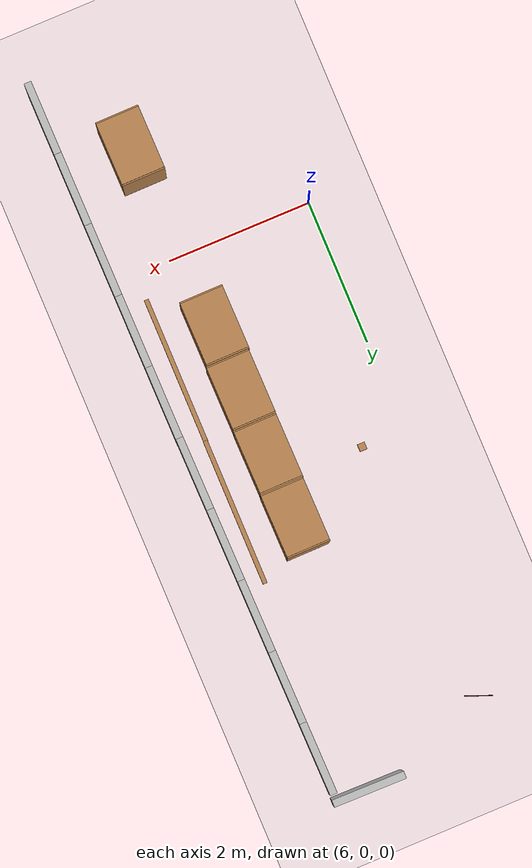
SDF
<sdf version="1.7">
 <world name="default">
  <model name="ground_plane">
   <static>1</static>
   <link name="link">
    <collision name="collision">
     <geometry><plane><normal>0 0 1</normal><size>100 100</size></plane></geometry>
     <surface><friction><ode><mu>100</mu><mu2>50</mu2></ode></friction></surface>
    </collision>
    <visual name="visual">
     <cast_shadows>0</cast_shadows>
     <geometry><plane><normal>0 0 1</normal><size>100 100</size></plane></geometry>
     <material>
      <script><uri>file://media/materials/scripts/gazebo.material</uri><name>Gazebo/Grey</name></script>
     </material>
    </visual>
   </link>
  </model>
  <model name="env_wood_shelf">
   <link name="base">
    <inertial>
     <pose>0 0 0.8 0 -0 0</pose>
     <mass>100</mass>
     <inertia><ixx>33.4</ixx><ixy>0</ixy><ixz>0</ixz><iyy>41.7</iyy><iyz>0</iyz><izz>8.42</izz></inertia>
    </inertial>
    <collision name="collision_bottom">
     <pose>0 0 0.01 0 -0 0</pose>
     <geometry><box><size>0.6 0.9 0.02</size></box></geometry>
    </collision>
    <visual name="visual_bottom">
     <pose>0 0 0.01 0 -0 0</pose>
     <geometry><box><size>0.6 0.9 0.02</size></box></geometry>
     <material>
      <script><uri>model://env_wood_shelf/materials/test_texture.material</uri><name>WoodTecture1</name></script>
     </material>
    </visual>
    <collision name="collision_middle1">
     <pose>0 0 0.61 0 -0 0</pose>
     <geometry><box><size>0.6 0.86 0.02</size></box></geometry>
    </collision>
    <visual name="visual_middle1">
     <pose>0 0 0.61 0 -0 0</pose>
     <geometry><box><size>0.6 0.86 0.02</size></box></geometry>
     <material>
      <script><uri>model://env_wood_shelf/materials/test_texture.material</uri><name>WoodTecture1</name></script>
     </material>
    </visual>
    <collision name="collision_middle2">
     <pose>0 0 1.11 0 -0 0</pose>
     <geometry><box><size>0.6 0.86 0.02</size></box></geometry>
    </collision>
    <visual name="visual_middle2">
     <pose>0 0 1.11 0 -0 0</pose>
     <geometry><box><size>0.6 0.86 0.02</size></box></geometry>
     <material>
      <script><uri>model://env_wood_shelf/materials/test_texture.material</uri><name>WoodTecture1</name></script>
     </material>
    </visual>
    <collision name="collision_top">
     <pose>0 0 1.59 0 -0 0</pose>
     <geometry><box><size>0.6 0.86 0.02</size></box></geometry>
    </collision>
    <visual name="visual_top">
     <pose>0 0 1.59 0 -0 0</pose>
     <geometry><box><size>0.6 0.86 0.02</size></box></geometry>
     <material>
      <script><uri>model://env_wood_shelf/materials/test_texture.material</uri><name>WoodTecture1</name></script>
     </material>
    </visual>
    <collision name="collision_right">
     <pose>0 0.44 0.8 0 -0 0</pose>
     <geometry><box><size>0.6 0.02 1.56</size></box></geometry>
    </collision>
    <visual name="visual_right">
     <pose>0 0.44 0.8 0 1.5707 0</pose>
     <geometry><box><size>1.56 0.02 0.6</size></box></geometry>
     <material>
      <script><uri>model://env_wood_shelf/materials/test_texture.material</uri><name>WoodTecture1</name></script>
     </material>
    </visual>
    <collision name="collision_left">
     <pose>0 -0.44 0.8 0 -0 0</pose>
     <geometry><box><size>0.6 0.02 1.56</size></box></geometry>
    </collision>
    <visual name="visual_left">
     <pose>0 -0.44 0.8 0 1.5707 0</pose>
     <geometry><box><size>1.56 0.02 0.6</size></box></geometry>
     <material>
      <script><uri>model://env_wood_shelf/materials/test_texture.material</uri><name>WoodTecture1</name></script>
     </material>
    </visual>
    <collision name="collision_box">
     <pose>0 -0.22 0.22 0 -0 0</pose>
     <geometry><box><size>0.4 0.3 0.4</size></box></geometry>
    </collision>
    <visual name="visual_box">
     <pose>0 -0.22 0.22 0 -0 0</pose>
     <geometry><box><size>0.4 0.3 0.4</size></box></geometry>
     <material>
      <script>
       <uri>model://env_wood_shelf/materials/test_texture.material</uri>
       <name>PlasticBlackTexture</name>
      </script>
     </material>
    </visual>
    <collision name="collision_cylinder">
     <pose>0 0.2 0.17 0 -0 0</pose>
     <geometry><cylinder><radius>0.2</radius><length>0.3</length></cylinder></geometry>
    </collision>
    <visual name="visual_cylinder">
     <pose>0 0.2 0.17 0 -0 0</pose>
     <geometry><cylinder><radius>0.2</radius><length>0.3</length></cylinder></geometry>
     <material>
      <script>
       <uri>model://env_wood_shelf/materials/test_texture.material</uri>
       <name>PlasticBlueTexture</name>
      </script>
     </material>
    </visual>
    <collision name="collision_book1">
     <pose>0 0 0.77 0 -0 0</pose>
     <geometry><box><size>0.4 0.86 0.3</size></box></geometry>
    </collision>
    <visual name="visual_books1">
     <pose>0 0 0.77 0 -0 0</pose>
     <geometry><box><size>0.4 0.86 0.3</size></box></geometry>
     <material>
      <script><uri>model://env_wood_shelf/materials/test_texture.material</uri><name>Books1Texture</name></script>
     </material>
    </visual>
    <collision name="collision_book2">
     <pose>0 0 1.27 0 -0 0</pose>
     <geometry><box><size>0.4 0.86 0.3</size></box></geometry>
    </collision>
    <visual name="visual_books2">
     <pose>0 0 1.27 0 -0 0</pose>
     <geometry><box><size>0.4 0.86 0.3</size></box></geometry>
     <material>
      <script><uri>model://env_wood_shelf/materials/test_texture.material</uri><name>Books2Texture</name></script>
     </material>
    </visual>
   </link>
   <pose>7.90553 -1.47724 0.00095 -8.4e-05 -4e-05 0.007382</pose>
  </model>
  <model name="env_large_room_1">
   <link name="base">
    <inertial>
     <mass>100</mass>
     <inertia><ixx>33.4</ixx><ixy>0</ixy><ixz>0</ixz><iyy>41.7</iyy><iyz>0</iyz><izz>8.42</izz></inertia>
    </inertial>
    <collision name="collision1">
     <pose>-2 0 0 0 -0 0</pose>
     <geometry><box><size>1 0.1 2</size></box></geometry>
    </collision>
    <collision name="collision2">
     <pose>-1 0 0 0 -0 0</pose>
     <geometry><box><size>1 0.1 2</size></box></geometry>
    </collision>
    <collision name="collision3"><geometry><box><size>1 0.1 2</size></box></geometry></collision>
    <collision name="collision4">
     <pose>1 0 0 0 -0 0</pose>
     <geometry><box><size>1 0.1 2</size></box></geometry>
    </collision>
    <collision name="collision5">
     <pose>2 0 0 0 -0 0</pose>
     <geometry><box><size>1 0.1 2</size></box></geometry>
    </collision>
    <visual name="visual1">
     <pose>-2 0 0 0 -0 0</pose>
     <geometry><box><size>1 0.1 2</size></box></geometry>
     <material>
      <script><uri>model://env_wall/materials/test_texture.material</uri><name>WallTexture01</name></script>
     </material>
    </visual>
    <visual name="visual2">
     <pose>-1 0 0 0 -0 0</pose>
     <geometry><box><size>1 0.1 2</size></box></geometry>
     <material>
      <script><uri>model://env_wall/materials/test_texture.material</uri><name>WallTexture01</name></script>
     </material>
    </visual>
    <visual name="visual3">
     <geometry><box><size>1 0.1 2</size></box></geometry>
     <material>
      <script><uri>model://env_wall/materials/test_texture.material</uri><name>WallTexture01</name></script>
     </material>
    </visual>
    <visual name="visual4">
     <pose>1 0 0 0 -0 0</pose>
     <geometry><box><size>1 0.1 2</size></box></geometry>
     <material>
      <script><uri>model://env_wall/materials/test_texture.material</uri><name>WallTexture01</name></script>
     </material>
    </visual>
    <visual name="visual5">
     <pose>2 0 0 0 -0 0</pose>
     <geometry><box><size>1 0.1 2</size></box></geometry>
     <material>
      <script><uri>model://env_wall/materials/test_texture.material</uri><name>WallTexture01</name></script>
     </material>
    </visual>
   </link>
   <pose>8.80677 -0.207575 1.00097 1.2e-05 -6.5e-05 -1.56527</pose>
  </model>
  <model name="env_large_room_2">
   <link name="base">
    <inertial>
     <mass>100</mass>
     <inertia><ixx>33.4</ixx><ixy>0</ixy><ixz>0</ixz><iyy>41.7</iyy><iyz>0</iyz><izz>8.42</izz></inertia>
    </inertial>
    <collision name="collision1">
     <pose>-2 0 0 0 -0 0</pose>
     <geometry><box><size>1 0.1 2</size></box></geometry>
    </collision>
    <collision name="collision2">
     <pose>-1 0 0 0 -0 0</pose>
     <geometry><box><size>1 0.1 2</size></box></geometry>
    </collision>
    <collision name="collision3"><geometry><box><size>1 0.1 2</size></box></geometry></collision>
    <collision name="collision4">
     <pose>1 0 0 0 -0 0</pose>
     <geometry><box><size>1 0.1 2</size></box></geometry>
    </collision>
    <collision name="collision5">
     <pose>2 0 0 0 -0 0</pose>
     <geometry><box><size>1 0.1 2</size></box></geometry>
    </collision>
    <visual name="visual1">
     <pose>-2 0 0 0 -0 0</pose>
     <geometry><box><size>1 0.1 2</size></box></geometry>
     <material>
      <script><uri>model://env_wall/materials/test_texture.material</uri><name>WallTexture01</name></script>
     </material>
    </visual>
    <visual name="visual2">
     <pose>-1 0 0 0 -0 0</pose>
     <geometry><box><size>1 0.1 2</size></box></geometry>
     <material>
      <script><uri>model://env_wall/materials/test_texture.material</uri><name>WallTexture01</name></script>
     </material>
    </visual>
    <visual name="visual3">
     <geometry><box><size>1 0.1 2</size></box></geometry>
     <material>
      <script><uri>model://env_wall/materials/test_texture.material</uri><name>WallTexture01</name></script>
     </material>
    </visual>
    <visual name="visual4">
     <pose>1 0 0 0 -0 0</pose>
     <geometry><box><size>1 0.1 2</size></box></geometry>
     <material>
      <script><uri>model://env_wall/materials/test_texture.material</uri><name>WallTexture01</name></script>
     </material>
    </visual>
    <visual name="visual5">
     <pose>2 0 0 0 -0 0</pose>
     <geometry><box><size>1 0.1 2</size></box></geometry>
     <material>
      <script><uri>model://env_wall/materials/test_texture.material</uri><name>WallTexture01</name></script>
     </material>
    </visual>
   </link>
   <pose>8.76311 4.79233 1.00096 1.9e-05 6.4e-05 -1.55973</pose>
  </model>
  <model name="env_wood_shelf_1">
   <link name="base">
    <inertial>
     <pose>0 0 0.8 0 -0 0</pose>
     <mass>100</mass>
     <inertia><ixx>33.4</ixx><ixy>0</ixy><ixz>0</ixz><iyy>41.7</iyy><iyz>0</iyz><izz>8.42</izz></inertia>
    </inertial>
    <collision name="collision_bottom">
     <pose>0 0 0.01 0 -0 0</pose>
     <geometry><box><size>0.6 0.9 0.02</size></box></geometry>
    </collision>
    <visual name="visual_bottom">
     <pose>0 0 0.01 0 -0 0</pose>
     <geometry><box><size>0.6 0.9 0.02</size></box></geometry>
     <material>
      <script><uri>model://env_wood_shelf/materials/test_texture.material</uri><name>WoodTecture1</name></script>
     </material>
    </visual>
    <collision name="collision_middle1">
     <pose>0 0 0.61 0 -0 0</pose>
     <geometry><box><size>0.6 0.86 0.02</size></box></geometry>
    </collision>
    <visual name="visual_middle1">
     <pose>0 0 0.61 0 -0 0</pose>
     <geometry><box><size>0.6 0.86 0.02</size></box></geometry>
     <material>
      <script><uri>model://env_wood_shelf/materials/test_texture.material</uri><name>WoodTecture1</name></script>
     </material>
    </visual>
    <collision name="collision_middle2">
     <pose>0 0 1.11 0 -0 0</pose>
     <geometry><box><size>0.6 0.86 0.02</size></box></geometry>
    </collision>
    <visual name="visual_middle2">
     <pose>0 0 1.11 0 -0 0</pose>
     <geometry><box><size>0.6 0.86 0.02</size></box></geometry>
     <material>
      <script><uri>model://env_wood_shelf/materials/test_texture.material</uri><name>WoodTecture1</name></script>
     </material>
    </visual>
    <collision name="collision_top">
     <pose>0 0 1.59 0 -0 0</pose>
     <geometry><box><size>0.6 0.86 0.02</size></box></geometry>
    </collision>
    <visual name="visual_top">
     <pose>0 0 1.59 0 -0 0</pose>
     <geometry><box><size>0.6 0.86 0.02</size></box></geometry>
     <material>
      <script><uri>model://env_wood_shelf/materials/test_texture.material</uri><name>WoodTecture1</name></script>
     </material>
    </visual>
    <collision name="collision_right">
     <pose>0 0.44 0.8 0 -0 0</pose>
     <geometry><box><size>0.6 0.02 1.56</size></box></geometry>
    </collision>
    <visual name="visual_right">
     <pose>0 0.44 0.8 0 1.5707 0</pose>
     <geometry><box><size>1.56 0.02 0.6</size></box></geometry>
     <material>
      <script><uri>model://env_wood_shelf/materials/test_texture.material</uri><name>WoodTecture1</name></script>
     </material>
    </visual>
    <collision name="collision_left">
     <pose>0 -0.44 0.8 0 -0 0</pose>
     <geometry><box><size>0.6 0.02 1.56</size></box></geometry>
    </collision>
    <visual name="visual_left">
     <pose>0 -0.44 0.8 0 1.5707 0</pose>
     <geometry><box><size>1.56 0.02 0.6</size></box></geometry>
     <material>
      <script><uri>model://env_wood_shelf/materials/test_texture.material</uri><name>WoodTecture1</name></script>
     </material>
    </visual>
    <collision name="collision_box">
     <pose>0 -0.22 0.22 0 -0 0</pose>
     <geometry><box><size>0.4 0.3 0.4</size></box></geometry>
    </collision>
    <visual name="visual_box">
     <pose>0 -0.22 0.22 0 -0 0</pose>
     <geometry><box><size>0.4 0.3 0.4</size></box></geometry>
     <material>
      <script>
       <uri>model://env_wood_shelf/materials/test_texture.material</uri>
       <name>PlasticBlackTexture</name>
      </script>
     </material>
    </visual>
    <collision name="collision_cylinder">
     <pose>0 0.2 0.17 0 -0 0</pose>
     <geometry><cylinder><radius>0.2</radius><length>0.3</length></cylinder></geometry>
    </collision>
    <visual name="visual_cylinder">
     <pose>0 0.2 0.17 0 -0 0</pose>
     <geometry><cylinder><radius>0.2</radius><length>0.3</length></cylinder></geometry>
     <material>
      <script>
       <uri>model://env_wood_shelf/materials/test_texture.material</uri>
       <name>PlasticBlueTexture</name>
      </script>
     </material>
    </visual>
    <collision name="collision_book1">
     <pose>0 0 0.77 0 -0 0</pose>
     <geometry><box><size>0.4 0.86 0.3</size></box></geometry>
    </collision>
    <visual name="visual_books1">
     <pose>0 0 0.77 0 -0 0</pose>
     <geometry><box><size>0.4 0.86 0.3</size></box></geometry>
     <material>
      <script><uri>model://env_wood_shelf/materials/test_texture.material</uri><name>Books1Texture</name></script>
     </material>
    </visual>
    <collision name="collision_book2">
     <pose>0 0 1.27 0 -0 0</pose>
     <geometry><box><size>0.4 0.86 0.3</size></box></geometry>
    </collision>
    <visual name="visual_books2">
     <pose>0 0 1.27 0 -0 0</pose>
     <geometry><box><size>0.4 0.86 0.3</size></box></geometry>
     <material>
      <script><uri>model://env_wood_shelf/materials/test_texture.material</uri><name>Books2Texture</name></script>
     </material>
    </visual>
   </link>
   <pose>7.8062 3.80779 0.001007 -1.7e-05 -1e-06 0.009206</pose>
  </model>
  <model name="env_wood_shelf_2">
   <link name="base">
    <inertial>
     <pose>0 0 0.8 0 -0 0</pose>
     <mass>100</mass>
     <inertia><ixx>33.4</ixx><ixy>0</ixy><ixz>0</ixz><iyy>41.7</iyy><iyz>0</iyz><izz>8.42</izz></inertia>
    </inertial>
    <collision name="collision_bottom">
     <pose>0 0 0.01 0 -0 0</pose>
     <geometry><box><size>0.6 0.9 0.02</size></box></geometry>
    </collision>
    <visual name="visual_bottom">
     <pose>0 0 0.01 0 -0 0</pose>
     <geometry><box><size>0.6 0.9 0.02</size></box></geometry>
     <material>
      <script><uri>model://env_wood_shelf/materials/test_texture.material</uri><name>WoodTecture1</name></script>
     </material>
    </visual>
    <collision name="collision_middle1">
     <pose>0 0 0.61 0 -0 0</pose>
     <geometry><box><size>0.6 0.86 0.02</size></box></geometry>
    </collision>
    <visual name="visual_middle1">
     <pose>0 0 0.61 0 -0 0</pose>
     <geometry><box><size>0.6 0.86 0.02</size></box></geometry>
     <material>
      <script><uri>model://env_wood_shelf/materials/test_texture.material</uri><name>WoodTecture1</name></script>
     </material>
    </visual>
    <collision name="collision_middle2">
     <pose>0 0 1.11 0 -0 0</pose>
     <geometry><box><size>0.6 0.86 0.02</size></box></geometry>
    </collision>
    <visual name="visual_middle2">
     <pose>0 0 1.11 0 -0 0</pose>
     <geometry><box><size>0.6 0.86 0.02</size></box></geometry>
     <material>
      <script><uri>model://env_wood_shelf/materials/test_texture.material</uri><name>WoodTecture1</name></script>
     </material>
    </visual>
    <collision name="collision_top">
     <pose>0 0 1.59 0 -0 0</pose>
     <geometry><box><size>0.6 0.86 0.02</size></box></geometry>
    </collision>
    <visual name="visual_top">
     <pose>0 0 1.59 0 -0 0</pose>
     <geometry><box><size>0.6 0.86 0.02</size></box></geometry>
     <material>
      <script><uri>model://env_wood_shelf/materials/test_texture.material</uri><name>WoodTecture1</name></script>
     </material>
    </visual>
    <collision name="collision_right">
     <pose>0 0.44 0.8 0 -0 0</pose>
     <geometry><box><size>0.6 0.02 1.56</size></box></geometry>
    </collision>
    <visual name="visual_right">
     <pose>0 0.44 0.8 0 1.5707 0</pose>
     <geometry><box><size>1.56 0.02 0.6</size></box></geometry>
     <material>
      <script><uri>model://env_wood_shelf/materials/test_texture.material</uri><name>WoodTecture1</name></script>
     </material>
    </visual>
    <collision name="collision_left">
     <pose>0 -0.44 0.8 0 -0 0</pose>
     <geometry><box><size>0.6 0.02 1.56</size></box></geometry>
    </collision>
    <visual name="visual_left">
     <pose>0 -0.44 0.8 0 1.5707 0</pose>
     <geometry><box><size>1.56 0.02 0.6</size></box></geometry>
     <material>
      <script><uri>model://env_wood_shelf/materials/test_texture.material</uri><name>WoodTecture1</name></script>
     </material>
    </visual>
    <collision name="collision_box">
     <pose>0 -0.22 0.22 0 -0 0</pose>
     <geometry><box><size>0.4 0.3 0.4</size></box></geometry>
    </collision>
    <visual name="visual_box">
     <pose>0 -0.22 0.22 0 -0 0</pose>
     <geometry><box><size>0.4 0.3 0.4</size></box></geometry>
     <material>
      <script>
       <uri>model://env_wood_shelf/materials/test_texture.material</uri>
       <name>PlasticBlackTexture</name>
      </script>
     </material>
    </visual>
    <collision name="collision_cylinder">
     <pose>0 0.2 0.17 0 -0 0</pose>
     <geometry><cylinder><radius>0.2</radius><length>0.3</length></cylinder></geometry>
    </collision>
    <visual name="visual_cylinder">
     <pose>0 0.2 0.17 0 -0 0</pose>
     <geometry><cylinder><radius>0.2</radius><length>0.3</length></cylinder></geometry>
     <material>
      <script>
       <uri>model://env_wood_shelf/materials/test_texture.material</uri>
       <name>PlasticBlueTexture</name>
      </script>
     </material>
    </visual>
    <collision name="collision_book1">
     <pose>0 0 0.77 0 -0 0</pose>
     <geometry><box><size>0.4 0.86 0.3</size></box></geometry>
    </collision>
    <visual name="visual_books1">
     <pose>0 0 0.77 0 -0 0</pose>
     <geometry><box><size>0.4 0.86 0.3</size></box></geometry>
     <material>
      <script><uri>model://env_wood_shelf/materials/test_texture.material</uri><name>Books1Texture</name></script>
     </material>
    </visual>
    <collision name="collision_book2">
     <pose>0 0 1.27 0 -0 0</pose>
     <geometry><box><size>0.4 0.86 0.3</size></box></geometry>
    </collision>
    <visual name="visual_books2">
     <pose>0 0 1.27 0 -0 0</pose>
     <geometry><box><size>0.4 0.86 0.3</size></box></geometry>
     <material>
      <script><uri>model://env_wood_shelf/materials/test_texture.material</uri><name>Books2Texture</name></script>
     </material>
    </visual>
   </link>
   <pose>7.80801 2.90775 0.001007 -1.7e-05 -1e-06 0.009146</pose>
  </model>
  <model name="env_wood_shelf_3">
   <link name="base">
    <inertial>
     <pose>0 0 0.8 0 -0 0</pose>
     <mass>100</mass>
     <inertia><ixx>33.4</ixx><ixy>0</ixy><ixz>0</ixz><iyy>41.7</iyy><iyz>0</iyz><izz>8.42</izz></inertia>
    </inertial>
    <collision name="collision_bottom">
     <pose>0 0 0.01 0 -0 0</pose>
     <geometry><box><size>0.6 0.9 0.02</size></box></geometry>
    </collision>
    <visual name="visual_bottom">
     <pose>0 0 0.01 0 -0 0</pose>
     <geometry><box><size>0.6 0.9 0.02</size></box></geometry>
     <material>
      <script><uri>model://env_wood_shelf/materials/test_texture.material</uri><name>WoodTecture1</name></script>
     </material>
    </visual>
    <collision name="collision_middle1">
     <pose>0 0 0.61 0 -0 0</pose>
     <geometry><box><size>0.6 0.86 0.02</size></box></geometry>
    </collision>
    <visual name="visual_middle1">
     <pose>0 0 0.61 0 -0 0</pose>
     <geometry><box><size>0.6 0.86 0.02</size></box></geometry>
     <material>
      <script><uri>model://env_wood_shelf/materials/test_texture.material</uri><name>WoodTecture1</name></script>
     </material>
    </visual>
    <collision name="collision_middle2">
     <pose>0 0 1.11 0 -0 0</pose>
     <geometry><box><size>0.6 0.86 0.02</size></box></geometry>
    </collision>
    <visual name="visual_middle2">
     <pose>0 0 1.11 0 -0 0</pose>
     <geometry><box><size>0.6 0.86 0.02</size></box></geometry>
     <material>
      <script><uri>model://env_wood_shelf/materials/test_texture.material</uri><name>WoodTecture1</name></script>
     </material>
    </visual>
    <collision name="collision_top">
     <pose>0 0 1.59 0 -0 0</pose>
     <geometry><box><size>0.6 0.86 0.02</size></box></geometry>
    </collision>
    <visual name="visual_top">
     <pose>0 0 1.59 0 -0 0</pose>
     <geometry><box><size>0.6 0.86 0.02</size></box></geometry>
     <material>
      <script><uri>model://env_wood_shelf/materials/test_texture.material</uri><name>WoodTecture1</name></script>
     </material>
    </visual>
    <collision name="collision_right">
     <pose>0 0.44 0.8 0 -0 0</pose>
     <geometry><box><size>0.6 0.02 1.56</size></box></geometry>
    </collision>
    <visual name="visual_right">
     <pose>0 0.44 0.8 0 1.5707 0</pose>
     <geometry><box><size>1.56 0.02 0.6</size></box></geometry>
     <material>
      <script><uri>model://env_wood_shelf/materials/test_texture.material</uri><name>WoodTecture1</name></script>
     </material>
    </visual>
    <collision name="collision_left">
     <pose>0 -0.44 0.8 0 -0 0</pose>
     <geometry><box><size>0.6 0.02 1.56</size></box></geometry>
    </collision>
    <visual name="visual_left">
     <pose>0 -0.44 0.8 0 1.5707 0</pose>
     <geometry><box><size>1.56 0.02 0.6</size></box></geometry>
     <material>
      <script><uri>model://env_wood_shelf/materials/test_texture.material</uri><name>WoodTecture1</name></script>
     </material>
    </visual>
    <collision name="collision_box">
     <pose>0 -0.22 0.22 0 -0 0</pose>
     <geometry><box><size>0.4 0.3 0.4</size></box></geometry>
    </collision>
    <visual name="visual_box">
     <pose>0 -0.22 0.22 0 -0 0</pose>
     <geometry><box><size>0.4 0.3 0.4</size></box></geometry>
     <material>
      <script>
       <uri>model://env_wood_shelf/materials/test_texture.material</uri>
       <name>PlasticBlackTexture</name>
      </script>
     </material>
    </visual>
    <collision name="collision_cylinder">
     <pose>0 0.2 0.17 0 -0 0</pose>
     <geometry><cylinder><radius>0.2</radius><length>0.3</length></cylinder></geometry>
    </collision>
    <visual name="visual_cylinder">
     <pose>0 0.2 0.17 0 -0 0</pose>
     <geometry><cylinder><radius>0.2</radius><length>0.3</length></cylinder></geometry>
     <material>
      <script>
       <uri>model://env_wood_shelf/materials/test_texture.material</uri>
       <name>PlasticBlueTexture</name>
      </script>
     </material>
    </visual>
    <collision name="collision_book1">
     <pose>0 0 0.77 0 -0 0</pose>
     <geometry><box><size>0.4 0.86 0.3</size></box></geometry>
    </collision>
    <visual name="visual_books1">
     <pose>0 0 0.77 0 -0 0</pose>
     <geometry><box><size>0.4 0.86 0.3</size></box></geometry>
     <material>
      <script><uri>model://env_wood_shelf/materials/test_texture.material</uri><name>Books1Texture</name></script>
     </material>
    </visual>
    <collision name="collision_book2">
     <pose>0 0 1.27 0 -0 0</pose>
     <geometry><box><size>0.4 0.86 0.3</size></box></geometry>
    </collision>
    <visual name="visual_books2">
     <pose>0 0 1.27 0 -0 0</pose>
     <geometry><box><size>0.4 0.86 0.3</size></box></geometry>
     <material>
      <script><uri>model://env_wood_shelf/materials/test_texture.material</uri><name>Books2Texture</name></script>
     </material>
    </visual>
   </link>
   <pose>7.81145 2.00502 0.00095 -8.4e-05 -4e-05 0.007602</pose>
  </model>
  <model name="env_wood_shelf_4">
   <link name="base">
    <inertial>
     <pose>0 0 0.8 0 -0 0</pose>
     <mass>100</mass>
     <inertia><ixx>33.4</ixx><ixy>0</ixy><ixz>0</ixz><iyy>41.7</iyy><iyz>0</iyz><izz>8.42</izz></inertia>
    </inertial>
    <collision name="collision_bottom">
     <pose>0 0 0.01 0 -0 0</pose>
     <geometry><box><size>0.6 0.9 0.02</size></box></geometry>
    </collision>
    <visual name="visual_bottom">
     <pose>0 0 0.01 0 -0 0</pose>
     <geometry><box><size>0.6 0.9 0.02</size></box></geometry>
     <material>
      <script><uri>model://env_wood_shelf/materials/test_texture.material</uri><name>WoodTecture1</name></script>
     </material>
    </visual>
    <collision name="collision_middle1">
     <pose>0 0 0.61 0 -0 0</pose>
     <geometry><box><size>0.6 0.86 0.02</size></box></geometry>
    </collision>
    <visual name="visual_middle1">
     <pose>0 0 0.61 0 -0 0</pose>
     <geometry><box><size>0.6 0.86 0.02</size></box></geometry>
     <material>
      <script><uri>model://env_wood_shelf/materials/test_texture.material</uri><name>WoodTecture1</name></script>
     </material>
    </visual>
    <collision name="collision_middle2">
     <pose>0 0 1.11 0 -0 0</pose>
     <geometry><box><size>0.6 0.86 0.02</size></box></geometry>
    </collision>
    <visual name="visual_middle2">
     <pose>0 0 1.11 0 -0 0</pose>
     <geometry><box><size>0.6 0.86 0.02</size></box></geometry>
     <material>
      <script><uri>model://env_wood_shelf/materials/test_texture.material</uri><name>WoodTecture1</name></script>
     </material>
    </visual>
    <collision name="collision_top">
     <pose>0 0 1.59 0 -0 0</pose>
     <geometry><box><size>0.6 0.86 0.02</size></box></geometry>
    </collision>
    <visual name="visual_top">
     <pose>0 0 1.59 0 -0 0</pose>
     <geometry><box><size>0.6 0.86 0.02</size></box></geometry>
     <material>
      <script><uri>model://env_wood_shelf/materials/test_texture.material</uri><name>WoodTecture1</name></script>
     </material>
    </visual>
    <collision name="collision_right">
     <pose>0 0.44 0.8 0 -0 0</pose>
     <geometry><box><size>0.6 0.02 1.56</size></box></geometry>
    </collision>
    <visual name="visual_right">
     <pose>0 0.44 0.8 0 1.5707 0</pose>
     <geometry><box><size>1.56 0.02 0.6</size></box></geometry>
     <material>
      <script><uri>model://env_wood_shelf/materials/test_texture.material</uri><name>WoodTecture1</name></script>
     </material>
    </visual>
    <collision name="collision_left">
     <pose>0 -0.44 0.8 0 -0 0</pose>
     <geometry><box><size>0.6 0.02 1.56</size></box></geometry>
    </collision>
    <visual name="visual_left">
     <pose>0 -0.44 0.8 0 1.5707 0</pose>
     <geometry><box><size>1.56 0.02 0.6</size></box></geometry>
     <material>
      <script><uri>model://env_wood_shelf/materials/test_texture.material</uri><name>WoodTecture1</name></script>
     </material>
    </visual>
    <collision name="collision_box">
     <pose>0 -0.22 0.22 0 -0 0</pose>
     <geometry><box><size>0.4 0.3 0.4</size></box></geometry>
    </collision>
    <visual name="visual_box">
     <pose>0 -0.22 0.22 0 -0 0</pose>
     <geometry><box><size>0.4 0.3 0.4</size></box></geometry>
     <material>
      <script>
       <uri>model://env_wood_shelf/materials/test_texture.material</uri>
       <name>PlasticBlackTexture</name>
      </script>
     </material>
    </visual>
    <collision name="collision_cylinder">
     <pose>0 0.2 0.17 0 -0 0</pose>
     <geometry><cylinder><radius>0.2</radius><length>0.3</length></cylinder></geometry>
    </collision>
    <visual name="visual_cylinder">
     <pose>0 0.2 0.17 0 -0 0</pose>
     <geometry><cylinder><radius>0.2</radius><length>0.3</length></cylinder></geometry>
     <material>
      <script>
       <uri>model://env_wood_shelf/materials/test_texture.material</uri>
       <name>PlasticBlueTexture</name>
      </script>
     </material>
    </visual>
    <collision name="collision_book1">
     <pose>0 0 0.77 0 -0 0</pose>
     <geometry><box><size>0.4 0.86 0.3</size></box></geometry>
    </collision>
    <visual name="visual_books1">
     <pose>0 0 0.77 0 -0 0</pose>
     <geometry><box><size>0.4 0.86 0.3</size></box></geometry>
     <material>
      <script><uri>model://env_wood_shelf/materials/test_texture.material</uri><name>Books1Texture</name></script>
     </material>
    </visual>
    <collision name="collision_book2">
     <pose>0 0 1.27 0 -0 0</pose>
     <geometry><box><size>0.4 0.86 0.3</size></box></geometry>
    </collision>
    <visual name="visual_books2">
     <pose>0 0 1.27 0 -0 0</pose>
     <geometry><box><size>0.4 0.86 0.3</size></box></geometry>
     <material>
      <script><uri>model://env_wood_shelf/materials/test_texture.material</uri><name>Books2Texture</name></script>
     </material>
    </visual>
   </link>
   <pose>7.80468 1.10104 0.00095 -8.4e-05 -4e-05 0.007261</pose>
  </model>
  <model name="env_curtain_1">
   <static>1</static>
   <link name="link">
    <collision name="collision">
     <geometry><box><size>0.01 1.8 1.6</size></box></geometry>
     <surface><friction><ode><mu>100</mu><mu2>50</mu2></ode></friction></surface>
    </collision>
    <visual name="visual">
     <cast_shadows>0</cast_shadows>
     <geometry><box><size>0.01 1.8 1.6</size></box></geometry>
     <material>
      <script><uri>model://env_curtain/materials/test_texture.material</uri><name>CurtainTexture</name></script>
     </material>
    </visual>
    <visual name="visual_top">
     <pose>0 0 0.83 0 -0 0</pose>
     <cast_shadows>0</cast_shadows>
     <geometry><box><size>0.06 2 0.1</size></box></geometry>
     <material>
      <script><uri>model://env_curtain/materials/test_texture.material</uri><name>WoodTecture1</name></script>
     </material>
    </visual>
   </link>
   <pose>8.49681 3.44509 0.907724 0 -0 0</pose>
  </model>
  <model name="env_curtain_2">
   <static>1</static>
   <link name="link">
    <collision name="collision">
     <geometry><box><size>0.01 1.8 1.6</size></box></geometry>
     <surface><friction><ode><mu>100</mu><mu2>50</mu2></ode></friction></surface>
    </collision>
    <visual name="visual">
     <cast_shadows>0</cast_shadows>
     <geometry><box><size>0.01 1.8 1.6</size></box></geometry>
     <material>
      <script><uri>model://env_curtain/materials/test_texture.material</uri><name>CurtainTexture</name></script>
     </material>
    </visual>
    <visual name="visual_top">
     <pose>0 0 0.83 0 -0 0</pose>
     <cast_shadows>0</cast_shadows>
     <geometry><box><size>0.06 2 0.1</size></box></geometry>
     <material>
      <script><uri>model://env_curtain/materials/test_texture.material</uri><name>WoodTecture1</name></script>
     </material>
    </visual>
   </link>
   <pose>8.49194 1.46709 0.906863 0 -0 0</pose>
  </model>
  <model name="wood_cube_10cm_1_clone">
   <link name="link">
    <pose>0 0 0.05 0 -0 0</pose>
    <inertial>
     <mass>0.5167</mass>
     <inertia>
      <ixx>0.000861167</ixx>
      <ixy>0</ixy>
      <ixz>0</ixz>
      <iyy>0.000861167</iyy>
      <iyz>0</iyz>
      <izz>0.000861167</izz>
     </inertia>
    </inertial>
    <collision name="collision">
     <geometry><box><size>0.1 0.1 0.1</size></box></geometry>
     <surface>
      <contact>
       <poissons_ratio>0.347</poissons_ratio>
       <elastic_modulus>8.8e+09</elastic_modulus>
       <ode><kp>100000</kp><kd>100</kd><max_vel>100</max_vel><min_depth>0.001</min_depth></ode>
      </contact>
      <friction>
       <torsional>
        <coefficient>1</coefficient>
        <use_patch_radius>0</use_patch_radius>
        <surface_radius>0.01</surface_radius>
       </torsional>
      </friction>
     </surface>
    </collision>
    <visual name="visual">
     <geometry><box><size>0.1 0.1 0.1</size></box></geometry>
     <material>
      <script><uri>file://media/materials/scripts/gazebo.material</uri><name>Gazebo/Wood</name></script>
     </material>
    </visual>
   </link>
   <pose>6.60074 3.25078 -3e-06 -3e-06 -1e-06 -1.1e-05</pose>
  </model>
  <model name="env_large_room_7_clone">
   <link name="base">
    <inertial>
     <mass>100</mass>
     <inertia><ixx>33.4</ixx><ixy>0</ixy><ixz>0</ixz><iyy>41.7</iyy><iyz>0</iyz><izz>8.42</izz></inertia>
    </inertial>
    <collision name="collision"><geometry><box><size>1 0.1 2</size></box></geometry></collision>
    <visual name="visual">
     <geometry><box><size>1 0.1 2</size></box></geometry>
     <material>
      <script><uri>model://env_wall/materials/test_texture.material</uri><name>WallTexture01</name></script>
     </material>
    </visual>
   </link>
   <pose>8.29233 7.40642 1.00081 7e-06 -0 -0.012406</pose>
  </model>
  <model name="ray_point">
   <static>1</static>
   <pose>6.47035 6.86762 0.004999 0 -1.57075 0</pose>
   <link name="ray_link">
    <visual name="visual_box">
     <geometry><box><size>10 0.01 0.01</size></box></geometry>
     <material>
      <script><uri>file://media/materials/scripts/gazebo.material</uri><name>Gazebo/Red</name></script>
     </material>
    </visual>
    <sensor name="sensor_ray" type="ray">
     <ray>
      <range><min>0.05</min><max>50</max></range>
      <scan>
       <horizontal>
        <samples>640</samples>
        <resolution>1</resolution>
        <min_angle>0</min_angle>
        <max_angle>0</max_angle>
       </horizontal>
       <vertical><samples>1</samples><min_angle>0</min_angle><max_angle>0</max_angle></vertical>
      </scan>
     </ray>
     <always_on>1</always_on>
     <update_rate>1</update_rate>
     <plugin name="range" filename="libgazebo_ros_target_point.so">
      <ros><namespace>/goal</namespace><remapping>~/out:=touched</remapping></ros>
      <output_type>std_msgs/Bool</output_type>
     </plugin>
    </sensor>
   </link>
  </model>
 </world>
</sdf>
